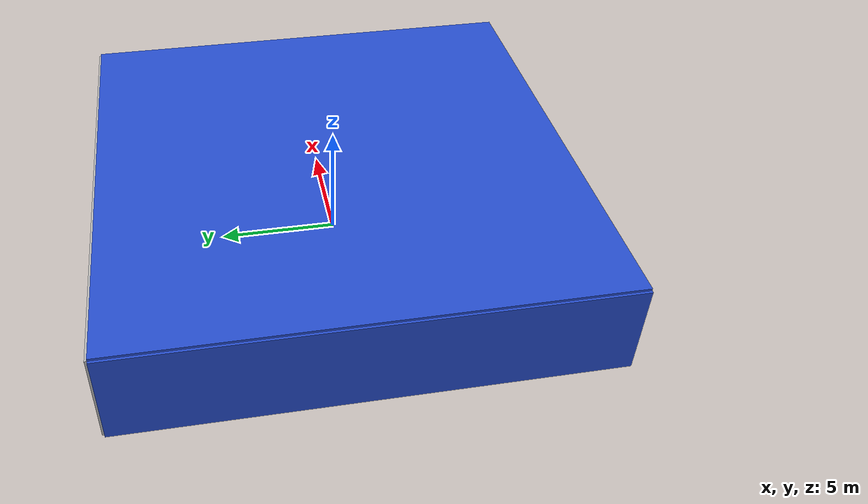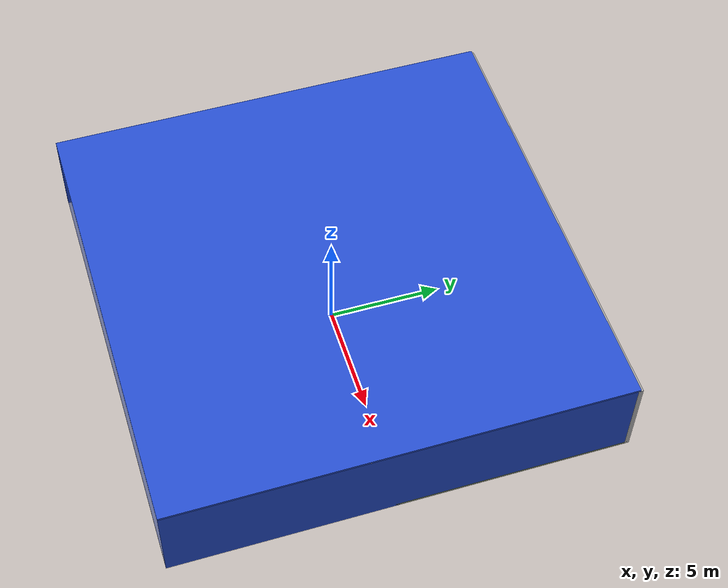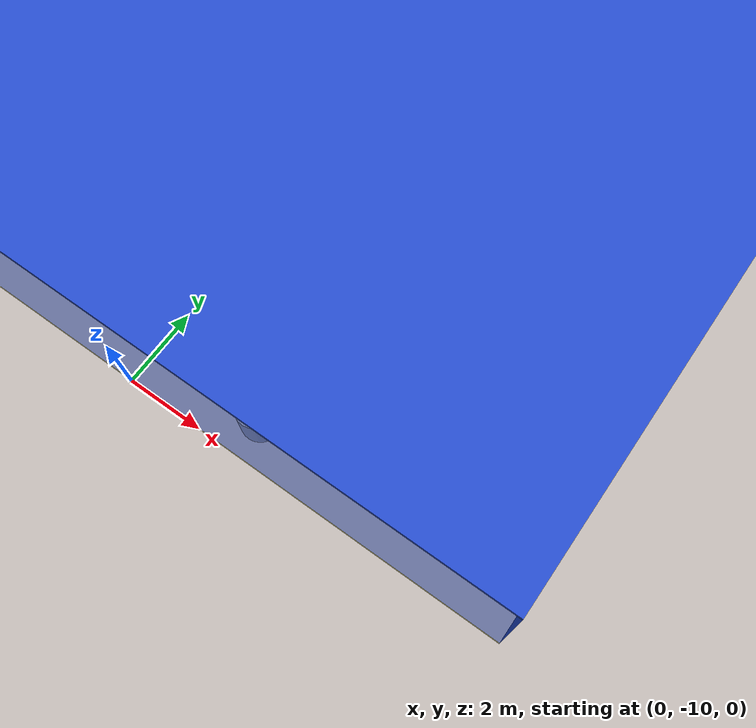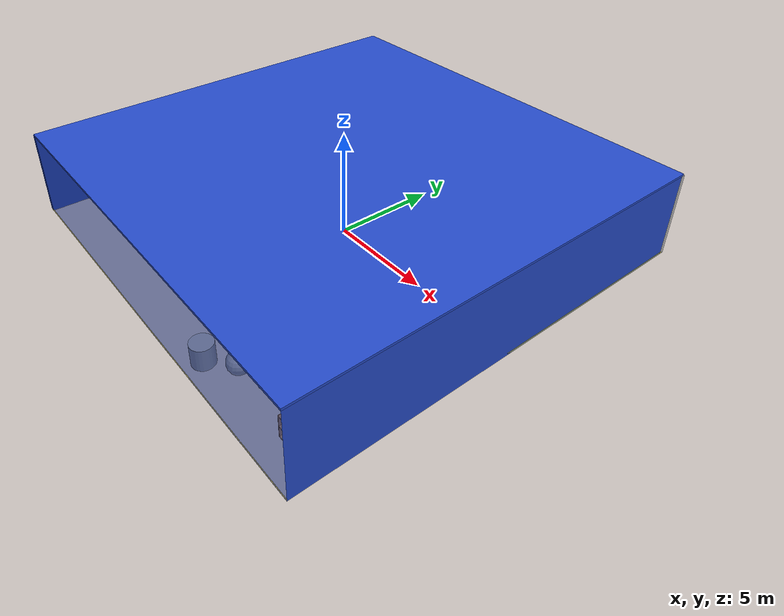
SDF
<sdf version="1.4">
 <world name="default">
  <physics type="ode">
   <max_step_size>0.001</max_step_size>
   <real_time_factor>1</real_time_factor>
   <real_time_update_rate>1000</real_time_update_rate>
   <gravity>0 0 -9.8</gravity>
  </physics>
  <scene><ambient>0.4 0.4 0.4 1</ambient><background>0.7 0.7 0.7 1</background><shadows>1</shadows></scene>
  <model name="Surrounding">
   <static>1</static>
   <link name="Ceiling">
    <collision name="Ceiling_Collision"><geometry><box><size>20 20 0.1</size></box></geometry></collision>
    <visual name="Ceiling_Visual">
     <geometry><box><size>20 20 0.1</size></box></geometry>
     <material>
      <script><uri>file://media/materials/scripts/gazebo.material</uri><name>Gazebo/BlueLaser</name></script>
     </material>
    </visual>
    <pose>0 0 4.05 0 0 0</pose>
   </link>
   <link name="Wall_South">
    <collision name="Wall_South_Collision">
     <geometry><box><size>20 0 4</size></box></geometry>
     <pose>0 0 2 0 -0 0</pose>
    </collision>
    <visual name="Wall_South_Visual">
     <pose>0 0 2 0 -0 0</pose>
     <geometry><box><size>20 0 4</size></box></geometry>
     <material>
      <script><uri>file://media/materials/scripts/gazebo.material</uri><name>Gazebo/BlueTransparent</name></script>
     </material>
    </visual>
    <velocity_decay><linear>0</linear><angular>0</angular></velocity_decay>
    <pose>0 -10 0 0 -0 0</pose>
   </link>
   <link name="Wall_East">
    <collision name="Wall_21_Collision">
     <geometry><box><size>20 0 4</size></box></geometry>
     <pose>0 0 2 0 -0 0</pose>
    </collision>
    <visual name="Wall_21_Visual">
     <pose>0 0 2 0 -0 0</pose>
     <geometry><box><size>20 0 4</size></box></geometry>
     <material>
      <script><uri>file://media/materials/scripts/gazebo.material</uri><name>Gazebo/BlueGlow</name></script>
     </material>
    </visual>
    <velocity_decay><linear>0</linear><angular>0</angular></velocity_decay>
    <pose>10 0 0 0 -0 1.5708</pose>
   </link>
   <link name="Wall_North">
    <collision name="Wall_22_Collision">
     <geometry><box><size>20 0.2 4</size></box></geometry>
     <pose>0 0 2 0 -0 0</pose>
    </collision>
    <visual name="Wall_22_Visual">
     <pose>0 0 2 0 -0 0</pose>
     <geometry><box><size>20 0.2 4</size></box></geometry>
     <material>
      <script><uri>file://media/materials/scripts/gazebo.material</uri><name>Gazebo/Pioneer2Body</name></script>
     </material>
    </visual>
    <velocity_decay><linear>0</linear><angular>0</angular></velocity_decay>
    <pose>0 10 0 0 -0 0</pose>
   </link>
   <link name="Wall_West">
    <collision name="Wall_23_Collision">
     <geometry><box><size>20 0.2 4</size></box></geometry>
     <pose>0 0 2 0 -0 0</pose>
    </collision>
    <visual name="Wall_23_Visual">
     <pose>0 0 2 0 -0 0</pose>
     <geometry><box><size>20 0.2 4</size></box></geometry>
     <material>
      <script><uri>file://media/materials/scripts/gazebo.material</uri><name>Gazebo/Blue</name></script>
     </material>
    </visual>
    <velocity_decay><linear>0</linear><angular>0</angular></velocity_decay>
    <pose>-10 0 0 0 0 -1.5708</pose>
   </link>
   <link name="Ground_link">
    <collision name="collision">
     <pose>0 0 .05 0 -0 0</pose>
     <geometry><box><size>20 20 0.1</size></box></geometry>
    </collision>
    <visual name="visual">
     <pose>0 0 .05 0 -0 0</pose>
     <geometry><box><size>20 20 0.1</size></box></geometry>
     <material>
      <script>
       <uri>file://media/materials/scripts/gazebo.material</uri>
       <name>Gazebo/YellowTransparent</name>
      </script>
     </material>
    </visual>
   </link>
   <static>1</static>
  </model>
  <spherical_coordinates>
   <surface_model>EARTH_WGS84</surface_model>
   <latitude_deg>0</latitude_deg>
   <longitude_deg>0</longitude_deg>
   <elevation>0</elevation>
   <heading_deg>0</heading_deg>
  </spherical_coordinates>
  <light name="lightball_0" type="diffuse">
   <diffuse>0.8 0.8 0.8 1</diffuse>
   <specular>0.2 0.2 0.2 1</specular>
   <attenuation>
    <range>100</range>
    <constant>0.7</constant>
    <linear>0.01</linear>
    <quadratic>0.001</quadratic>
   </attenuation>
   <direction>-0.5 0.1 -0.9</direction>
   <pose>5.95715406573 -6.32119324751 1.9532463604 0 0 0</pose>
  </light>
  <light name="lightball_1" type="diffuse">
   <diffuse>0.8 0.8 0.8 1</diffuse>
   <specular>0.2 0.2 0.2 1</specular>
   <attenuation>
    <range>100</range>
    <constant>0.7</constant>
    <linear>0.01</linear>
    <quadratic>0.001</quadratic>
   </attenuation>
   <direction>-0.5 0.1 -0.9</direction>
   <pose>9.18361557297 -4.87434706794 1.48799120124 0 0 0</pose>
  </light>
  <light name="lightball_2" type="diffuse">
   <diffuse>0.8 0.8 0.8 1</diffuse>
   <specular>0.2 0.2 0.2 1</specular>
   <attenuation>
    <range>100</range>
    <constant>0.7</constant>
    <linear>0.01</linear>
    <quadratic>0.001</quadratic>
   </attenuation>
   <direction>-0.5 0.1 -0.9</direction>
   <pose>-9.36531306548 -9.94272307885 3.77095152164 0 0 0</pose>
  </light>
  <light name="lightball_3" type="diffuse">
   <diffuse>0.8 0.8 0.8 1</diffuse>
   <specular>0.2 0.2 0.2 1</specular>
   <attenuation>
    <range>100</range>
    <constant>0.7</constant>
    <linear>0.01</linear>
    <quadratic>0.001</quadratic>
   </attenuation>
   <direction>-0.5 0.1 -0.9</direction>
   <pose>1.18530426221 -3.5346637157 2.7534862349 0 0 0</pose>
  </light>
  <light name="lightball_4" type="diffuse">
   <diffuse>0.8 0.8 0.8 1</diffuse>
   <specular>0.2 0.2 0.2 1</specular>
   <attenuation>
    <range>100</range>
    <constant>0.7</constant>
    <linear>0.01</linear>
    <quadratic>0.001</quadratic>
   </attenuation>
   <direction>-0.5 0.1 -0.9</direction>
   <pose>7.03246377433 3.97473674591 3.04848032648 0 0 0</pose>
  </light>
  <light name="lightball_5" type="diffuse">
   <diffuse>0.8 0.8 0.8 1</diffuse>
   <specular>0.2 0.2 0.2 1</specular>
   <attenuation>
    <range>100</range>
    <constant>0.7</constant>
    <linear>0.01</linear>
    <quadratic>0.001</quadratic>
   </attenuation>
   <direction>-0.5 0.1 -0.9</direction>
   <pose>-6.20321737429 -6.08562055032 3.79783801686 0 0 0</pose>
  </light>
  <light name="lightball_6" type="diffuse">
   <diffuse>0.8 0.8 0.8 1</diffuse>
   <specular>0.2 0.2 0.2 1</specular>
   <attenuation>
    <range>100</range>
    <constant>0.7</constant>
    <linear>0.01</linear>
    <quadratic>0.001</quadratic>
   </attenuation>
   <direction>-0.5 0.1 -0.9</direction>
   <pose>1.54139232021 -9.90594047766 3.46501126995 0 0 0</pose>
  </light>
  <light name="lightball_7" type="diffuse">
   <diffuse>0.8 0.8 0.8 1</diffuse>
   <specular>0.2 0.2 0.2 1</specular>
   <attenuation>
    <range>100</range>
    <constant>0.7</constant>
    <linear>0.01</linear>
    <quadratic>0.001</quadratic>
   </attenuation>
   <direction>-0.5 0.1 -0.9</direction>
   <pose>-1.3908363869 -9.81134655126 2.99904815671 0 0 0</pose>
  </light>
  <include>
   <uri>model://textured_shapes</uri>
   <pose>-6.98676900819 4.6719242221 0 0 0 0.242056296159</pose>
  </include>
  <include>
   <uri>model://construction_cone</uri>
   <pose>-3.69358740574 7.11162563561 0 0 0 0.878050363016</pose>
  </include>
  <include><uri>model://cabinet</uri><pose>1.5186621342 -2.51173902313 0 0 0 1.99958394666</pose></include>
  <include>
   <uri>model://construction_cone</uri>
   <pose>2.05855108037 2.21983906215 0 0 0 0.624489660405</pose>
  </include>
  <include>
   <uri>model://textured_shapes</uri>
   <pose>4.14820838023 -8.14891755041 0 0 0 2.14008689034</pose>
  </include>
  <include><uri>model://cabinet</uri><pose>8.09857936023 -8.62797651184 0 0 0 1.55099097786</pose></include>
  <include><uri>model://cabinet</uri><pose>7.67912564237 -1.01095497653 0 0 0 2.05089135359</pose></include>
 </world>
</sdf>

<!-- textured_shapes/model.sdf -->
<sdf version="1.6">
  <model name="textured_shapes">
    <pose>0 0 0.5 0 0 0</pose>
    <link name="box">
      <pose>0 -1.5 0 0 0 0</pose>
      <collision name="collision">
        <geometry>
          <box>
            <size>1 1 1</size>
          </box>
        </geometry>
      </collision>
      <visual name="visual">
        <geometry>
          <box>
            <size>1 1 1</size>
          </box>
        </geometry>
        <material>
          <script>
            <uri>model://../model_source/models/textured_shapes/materials/scripts</uri>
            <uri>model://../model_source/models/textured_shapes/materials/textures</uri>
            <name>TexturedShape/Squares</name>
          </script>
        </material>
      </visual>
    </link>
    <link name="sphere">
      <collision name="collision">
        <geometry>
          <sphere>
            <radius>0.5</radius>
          </sphere>
        </geometry>
      </collision>
      <visual name="visual">
        <geometry>
          <sphere>
            <radius>0.5</radius>
          </sphere>
        </geometry>
        <material>
          <script>
            <uri>model://../model_source/models/textured_shapes/materials/scripts</uri>
            <uri>model://../model_source/models/textured_shapes/materials/textures</uri>
            <name>TexturedShape/Squares</name>
          </script>
        </material>
      </visual>
    </link>
    <link name="cylinder">
      <pose>0 1.5 0 0 0 0</pose>
      <collision name="collision">
        <geometry>
          <cylinder>
            <radius>0.5</radius>
            <length>1</length>
          </cylinder>
        </geometry>
      </collision>
      <visual name="visual">
        <geometry>
          <cylinder>
            <radius>0.5</radius>
            <length>1</length>
          </cylinder>
        </geometry>
        <material>
          <script>
            <uri>model://../model_source/models/textured_shapes/materials/scripts</uri>
            <uri>model://../model_source/models/textured_shapes/materials/textures</uri>
            <name>TexturedShape/Squares</name>
          </script>
        </material>
      </visual>
    </link>
  </model>
</sdf>

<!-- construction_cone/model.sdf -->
<sdf version="1.5">
  <model name="Construction Cone">
    <link name="link">
      <collision name="collision">
        <geometry>
          <mesh>
            <scale>10 10 10</scale>
            <uri>file://isr-testbed/construction_cone/meshes/construction_cone.dae</uri>
          </mesh>
        </geometry>
      </collision>
      <visual name="visual">
        <geometry>
          <mesh>
            <scale>10 10 10</scale>
            <uri>file://isr-testbed/construction_cone/meshes/construction_cone.dae</uri>
          </mesh>
        </geometry>
      </visual>
    </link>
  </model>
</sdf>

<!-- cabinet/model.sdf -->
<sdf version="1.5">
  <model name="cabinet">
    <static>true</static>
    <link name="cabinet_bottom_plate">
      <inertial>
        <pose>0 0 -1 0 0 0</pose>
        <inertia>
          <ixx>2.050000</ixx>
          <ixy>0</ixy>
          <ixz>0</ixz>
          <iyy>2.050000</iyy>
          <iyz>0</iyz>
          <izz>2.050000</izz>
        </inertia>
        <mass>25.000000</mass>
      </inertial>
      <collision name="cabinet_bottom_plate_geom">
        <pose>0 0 0.010000 0 0 0</pose>
        <geometry>
          <box>
            <size>0.450000 0.450000 0.020000</size>
          </box>
        </geometry>
      </collision>
      <visual name="cabinet_bottom_plate_geom_visual">
        <pose>0 0 0.010000 0 0 0</pose>
        <geometry>
          <box>
            <size>0.450000 0.450000 0.020000</size>
          </box>
        </geometry>
        <material>
          <script>
            <uri>model://media/materials/scripts/gazebo.material</uri>
            <name>Gazebo/Wood</name>
          </script>
        </material>
      </visual>
      <collision name="cabinet_bottom_plate_geom_cabinet_back_plate">
        <pose>0.235000 0 0.510000 0 0 0</pose>
        <geometry>
          <box>
            <size>0.020000 0.450000 1.020000</size>
          </box>
        </geometry>
      </collision>
      <visual name="cabinet_bottom_plate_geom_cabinet_back_plate_visual">
        <pose>0.235000 0 0.510000 0 0 0</pose>
        <geometry>
          <box>
            <size>0.020000 0.450000 1.020000</size>
          </box>
        </geometry>
        <material>
          <script>
            <uri>model://media/materials/scripts/gazebo.material</uri>
            <name>Gazebo/Wood</name>
          </script>
        </material>
      </visual>
      <collision name="cabinet_bottom_plate_geom_cabinet_left_plate">
        <pose>0 0.235000 0.510000 0 0 0</pose>
        <geometry>
          <box>
            <size>0.450000 0.020000 1.020000</size>
          </box>
        </geometry>
      </collision>
      <visual name="cabinet_bottom_plate_geom_cabinet_left_plate_visual">
        <pose>0 0.235000 0.510000 0 0 0</pose>
        <geometry>
          <box>
            <size>0.450000 0.020000 1.020000</size>
          </box>
        </geometry>
        <material>
          <script>
            <uri>model://media/materials/scripts/gazebo.material</uri>
            <name>Gazebo/Wood</name>
          </script>
        </material>
      </visual>
      <collision name="cabinet_bottom_plate_geom_cabinet_middle_plate">
        <pose>0 0 0.510000 0 0 0</pose>
        <geometry>
          <box>
            <size>0.450000 0.450000 0.020000</size>
          </box>
        </geometry>
      </collision>
      <visual name="cabinet_bottom_plate_geom_cabinet_middle_plate_visual">
        <pose>0 0 0.510000 0 0 0</pose>
        <geometry>
          <box>
            <size>0.450000 0.450000 0.020000</size>
          </box>
        </geometry>
        <material>
          <script>
            <uri>model://media/materials/scripts/gazebo.material</uri>
            <name>Gazebo/Wood</name>
          </script>
        </material>
      </visual>
      <collision name="cabinet_bottom_plate_geom_cabinet_right_plate">
        <pose>0 -0.235000 0.510000 0 0 0</pose>
        <geometry>
          <box>
            <size>0.450000 0.020000 1.020000</size>
          </box>
        </geometry>
      </collision>
      <visual name="cabinet_bottom_plate_geom_cabinet_right_plate_visual">
        <pose>0 -0.235000 0.510000 0 0 0</pose>
        <geometry>
          <box>
            <size>0.450000 0.020000 1.020000</size>
          </box>
        </geometry>
        <material>
          <script>
            <uri>model://media/materials/scripts/gazebo.material</uri>
            <name>Gazebo/Wood</name>
          </script>
        </material>
      </visual>
      <collision name="cabinet_bottom_plate_geom_cabinet_top_plate">
        <pose>0 0 1.010000 0 0 0</pose>
        <geometry>
          <box>
            <size>0.450000 0.450000 0.020000</size>
          </box>
        </geometry>
      </collision>
      <visual name="cabinet_bottom_plate_geom_cabinet_top_plate_visual">
        <pose>0 0 1.010000 0 0 0</pose>
        <geometry>
          <box>
            <size>0.450000 0.450000 0.020000</size>
          </box>
        </geometry>
        <material>
          <script>
            <uri>model://media/materials/scripts/gazebo.material</uri>
            <name>Gazebo/Wood</name>
          </script>
        </material>
      </visual>
    </link>
  </model>
</sdf>
